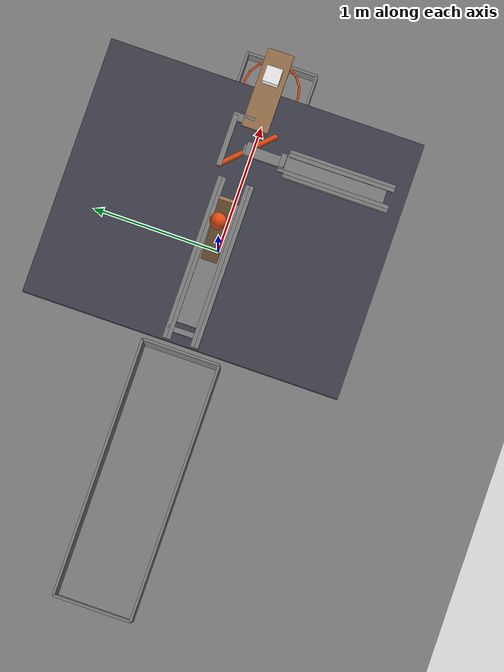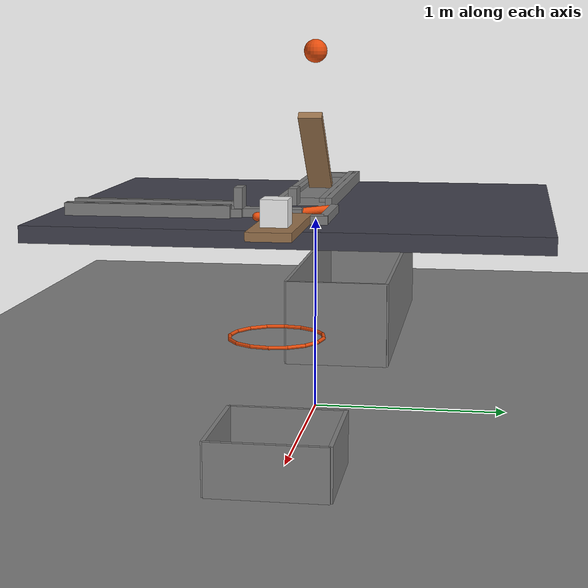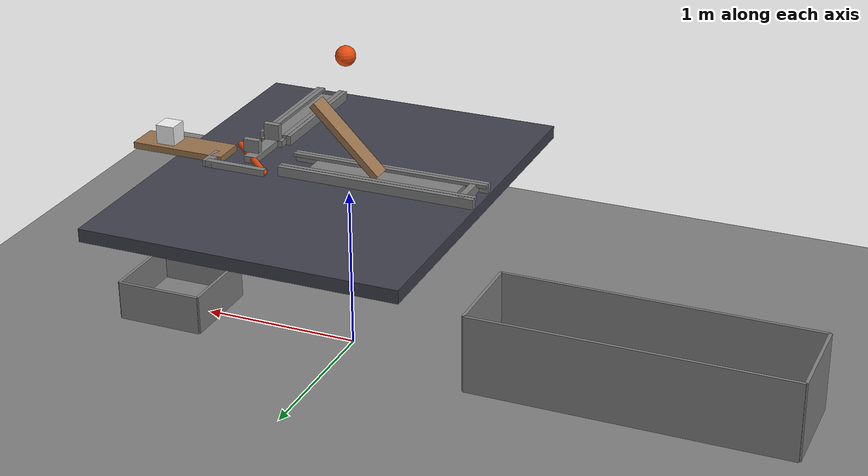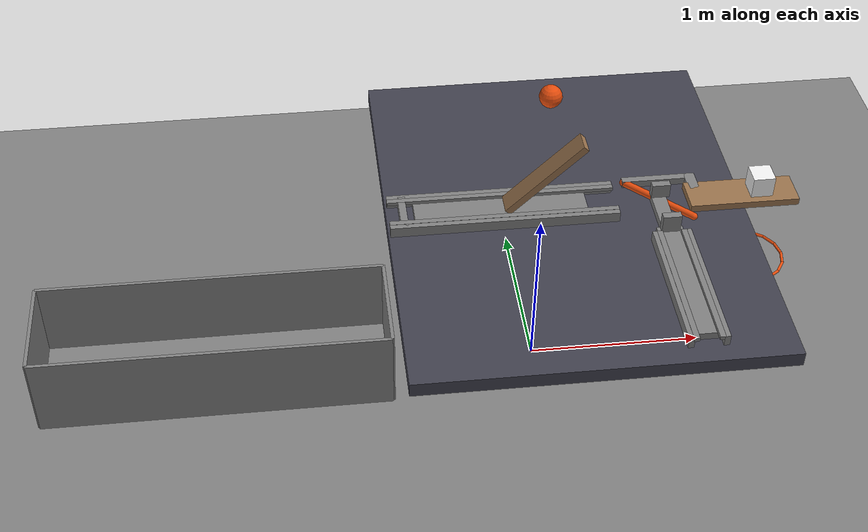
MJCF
<mujoco model="gravity_driven_crossed_slides">
  <compiler angle="radian"/>
  <option timestep="0.002"/>
  <worldbody>
    <geom name="floor" type="plane" size="6 6 0.1" friction="0.8 0.005 0.03"/>
    <body name="box">
      <geom name="box_base" type="box" pos="1.2 0 0.015" size="0.275 0.275 0.015" friction="0.8 0.005 0.0001" solref="0.01 1"/>
      <geom name="box_near_wall" type="box" pos="0.925 0 0.125" size="0.01 0.275 0.125" friction="0.8 0.005 0.0001" solref="0.01 1"/>
      <geom name="box_far_wall" type="box" pos="1.475 0 0.125" size="0.01 0.275 0.125" friction="0.8 0.005 0.0001" solref="0.01 1"/>
      <geom name="box_left_wall" type="box" pos="1.2 0.275 0.125" size="0.275 0.01 0.125" friction="0.8 0.005 0.0001" solref="0.01 1"/>
      <geom name="box_right_wall" type="box" pos="1.2 -0.275 0.125" size="0.275 0.01 0.125" friction="0.8 0.005 0.0001" solref="0.01 1"/>
    </body>
    <body name="hoop">
      <geom name="hoop_00" type="capsule" size="0.008" fromto="1.408 0 0.65 1.39217 0.0795982 0.65" rgba="0.9 0.3 0.05 1"/>
      <geom name="hoop_01" type="capsule" size="0.008" fromto="1.39217 0.0795982 0.65 1.34708 0.147078 0.65" rgba="0.9 0.3 0.05 1"/>
      <geom name="hoop_02" type="capsule" size="0.008" fromto="1.34708 0.147078 0.65 1.2796 0.192167 0.65" rgba="0.9 0.3 0.05 1"/>
      <geom name="hoop_03" type="capsule" size="0.008" fromto="1.2796 0.192167 0.65 1.2 0.208 0.65" rgba="0.9 0.3 0.05 1"/>
      <geom name="hoop_04" type="capsule" size="0.008" fromto="1.2 0.208 0.65 1.1204 0.192167 0.65" rgba="0.9 0.3 0.05 1"/>
      <geom name="hoop_05" type="capsule" size="0.008" fromto="1.1204 0.192167 0.65 1.05292 0.147078 0.65" rgba="0.9 0.3 0.05 1"/>
      <geom name="hoop_06" type="capsule" size="0.008" fromto="1.05292 0.147078 0.65 1.00783 0.0795982 0.65" rgba="0.9 0.3 0.05 1"/>
      <geom name="hoop_07" type="capsule" size="0.008" fromto="1.00783 0.0795982 0.65 0.992 2.54727e-17 0.65" rgba="0.9 0.3 0.05 1"/>
      <geom name="hoop_08" type="capsule" size="0.008" fromto="0.992 2.54727e-17 0.65 1.00783 -0.0795982 0.65" rgba="0.9 0.3 0.05 1"/>
      <geom name="hoop_09" type="capsule" size="0.008" fromto="1.00783 -0.0795982 0.65 1.05292 -0.147078 0.65" rgba="0.9 0.3 0.05 1"/>
      <geom name="hoop_10" type="capsule" size="0.008" fromto="1.05292 -0.147078 0.65 1.1204 -0.192167 0.65" rgba="0.9 0.3 0.05 1"/>
      <geom name="hoop_11" type="capsule" size="0.008" fromto="1.1204 -0.192167 0.65 1.2 -0.208 0.65" rgba="0.9 0.3 0.05 1"/>
      <geom name="hoop_12" type="capsule" size="0.008" fromto="1.2 -0.208 0.65 1.2796 -0.192167 0.65" rgba="0.9 0.3 0.05 1"/>
      <geom name="hoop_13" type="capsule" size="0.008" fromto="1.2796 -0.192167 0.65 1.34708 -0.147078 0.65" rgba="0.9 0.3 0.05 1"/>
      <geom name="hoop_14" type="capsule" size="0.008" fromto="1.34708 -0.147078 0.65 1.39217 -0.0795982 0.65" rgba="0.9 0.3 0.05 1"/>
      <geom name="hoop_15" type="capsule" size="0.008" fromto="1.39217 -0.0795982 0.65 1.408 -5.09453e-17 0.65" rgba="0.9 0.3 0.05 1"/>
    </body>
    <body name="ball tray">
      <geom name="ball tray_base" type="box" pos="-1.85 0 0.015" size="1 0.3 0.015" friction="0.8 0.005 0.03" solref="0.01 1"/>
      <geom name="ball tray_near_wall" type="box" pos="-2.85 0 0.25" size="0.01 0.3 0.25" friction="0.8 0.005 0.03" solref="0.01 1"/>
      <geom name="ball tray_far_wall" type="box" pos="-0.85 0 0.25" size="0.01 0.3 0.25" friction="0.8 0.005 0.03" solref="0.01 1"/>
      <geom name="ball tray_left_wall" type="box" pos="-1.85 0.3 0.25" size="1 0.01 0.25" friction="0.8 0.005 0.03" solref="0.01 1"/>
      <geom name="ball tray_right_wall" type="box" pos="-1.85 -0.3 0.25" size="1 0.01 0.25" friction="0.8 0.005 0.03" solref="0.01 1"/>
    </body>
    <body name="slide bed">
      <geom name="slide bed" type="box" pos="0.125 0 1.06" size="0.975 1.2 0.04" friction="0.005 0.005 0.0001" solref="0.01 1" rgba="0.25 0.25 0.3 1"/>
    </body>
    <body name="first left rail">
      <geom name="first left rail" type="box" pos="-0.22 0.12 1.12" size="0.62 0.015 0.04" friction="0.005 0.005 0.0001" solref="0.01 1"/>
    </body>
    <body name="first right rail">
      <geom name="first right rail" type="box" pos="-0.22 -0.12 1.12" size="0.62 0.015 0.04" friction="0.005 0.005 0.0001" solref="0.01 1"/>
    </body>
    <body name="first left keeper">
      <geom name="first left keeper" type="box" pos="-0.22 0.09 1.151" size="0.62 0.015 0.01" friction="0.005 0.005 0.0001" solref="0.01 1"/>
    </body>
    <body name="first right keeper">
      <geom name="first right keeper" type="box" pos="-0.22 -0.09 1.151" size="0.62 0.015 0.01" friction="0.005 0.005 0.0001" solref="0.01 1"/>
    </body>
    <body name="first rear stop">
      <geom name="first rear stop" type="box" pos="-0.76 0 1.12" size="0.02 0.12 0.04" solref="0.01 1"/>
    </body>
    <body name="slider1" pos="0 0 1.35">
      <freejoint/>
      <geom name="slider1" type="box" pos="0 0 0" size="0.282843 0.06 0.02" euler="0 -0.785398 0" mass="0.12" friction="0.005 0.005 0.0001" solref="0.01 1" rgba="0.6 0.45 0.3 1"/>
      <geom name="first carriage" type="box" pos="-0.23 0 -0.23" size="0.47 0.1 0.02" mass="0.06" friction="0.005 0.005 0.0001" solref="0.01 1"/>
    </body>
    <body name="second near rail">
      <geom name="second near rail" type="box" pos="0.55 -0.7 1.12" size="0.015 0.4 0.04" friction="0.005 0.005 0.0001" solref="0.01 1"/>
    </body>
    <body name="second far rail">
      <geom name="second far rail" type="box" pos="0.73 -0.7 1.12" size="0.015 0.4 0.04" friction="0.005 0.005 0.0001" solref="0.01 1"/>
    </body>
    <body name="second near keeper">
      <geom name="second near keeper" type="box" pos="0.575 -0.7 1.151" size="0.015 0.4 0.01" friction="0.005 0.005 0.0001" solref="0.01 1"/>
    </body>
    <body name="second far keeper">
      <geom name="second far keeper" type="box" pos="0.705 -0.7 1.151" size="0.015 0.4 0.01" friction="0.005 0.005 0.0001" solref="0.01 1"/>
    </body>
    <body name="second end stop">
      <geom name="second end stop" type="box" pos="0.64 -0.01 1.2" size="0.05 0.02 0.04" solref="0.01 1"/>
    </body>
    <body name="slider2" pos="0.64 0 1.12">
      <freejoint/>
      <geom name="slider2" type="capsule" size="0.02" fromto="-0.16 0.16 0 0.16 -0.16 0" mass="0.08" friction="0.005 0.005 0.0001" solref="0.01 1" rgba="0.9 0.3 0.05 1"/>
      <geom name="second runner" type="box" pos="0 -0.65 0" size="0.07 0.4 0.02" mass="0.08" friction="0.005 0.005 0.0001" solref="0.01 1"/>
      <geom name="runner link" type="box" pos="0 -0.13 0" size="0.04 0.16 0.02" mass="0.025" friction="0.005 0.005 0.0001" solref="0.01 1"/>
      <geom name="second stop lug" type="box" pos="0 -0.27 0.07" size="0.05 0.02 0.05" mass="0.02" friction="0.005 0.005 0.0001" solref="0.01 1"/>
      <geom name="support connecting bar" type="box" pos="0.025 0.16 0" size="0.195 0.02 0.02" mass="0.025" friction="0.005 0.005 0.0001" solref="0.01 1"/>
      <geom name="support bracket" type="box" pos="0.21 0.1 0" size="0.03 0.08 0.02" mass="0.02" friction="0.005 0.005 0.0001" solref="0.01 1"/>
      <geom name="withdrawable support" type="box" pos="0.46 0 0" size="0.3 0.1 0.02" mass="0.06" friction="0.001 0.005 0.0001" solref="0.01 1" rgba="0.6 0.45 0.3 1"/>
    </body>
    <body name="block" pos="1.2 0 1.2">
      <freejoint/>
      <geom name="block" type="box" pos="0 0 0" size="0.06 0.06 0.06" mass="0.3" friction="0.001 0.005 0.0001" solref="0.01 1" rgba="0.95 0.95 0.95 1"/>
    </body>
    <body name="ball" pos="0 0 1.86314">
      <freejoint/>
      <geom name="ball" type="sphere" pos="0 0 0" size="0.06" mass="2.5" condim="6" friction="0.005 0.005 0.0001" solref="0.01 1" rgba="0.9 0.3 0.05 1"/>
    </body>
  </worldbody>
  <keyframe>
    <key name="start" qpos="0 0 1.35 1 0 0 0 0.64 0 1.12 1 0 0 0 1.2 0 1.2 1 0 0 0 0 0 1.86314 1 0 0 0" qvel="0 0 0 0 0 0 0 0 0 0 0 0 0 0 0 0 0 0 0 0 0 0 0 0"/>
  </keyframe>
</mujoco>
